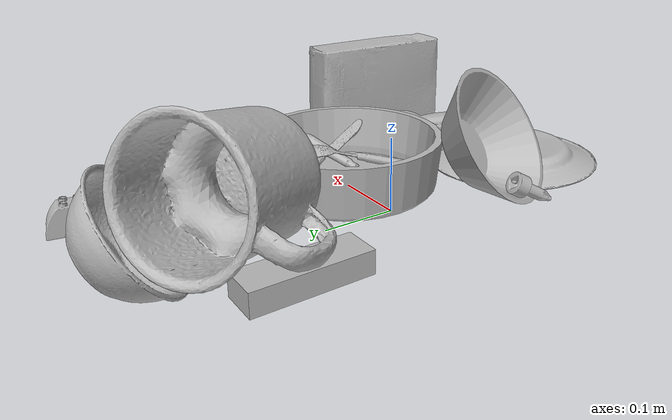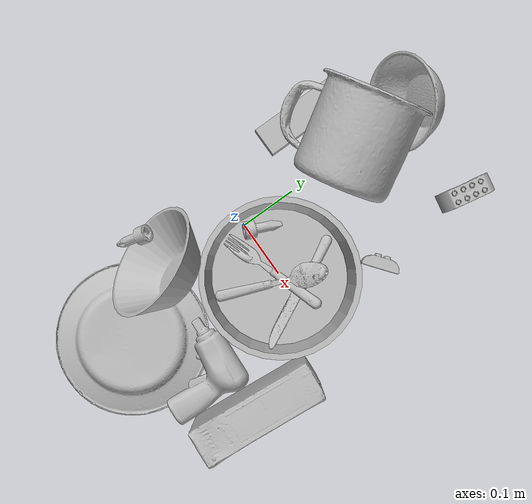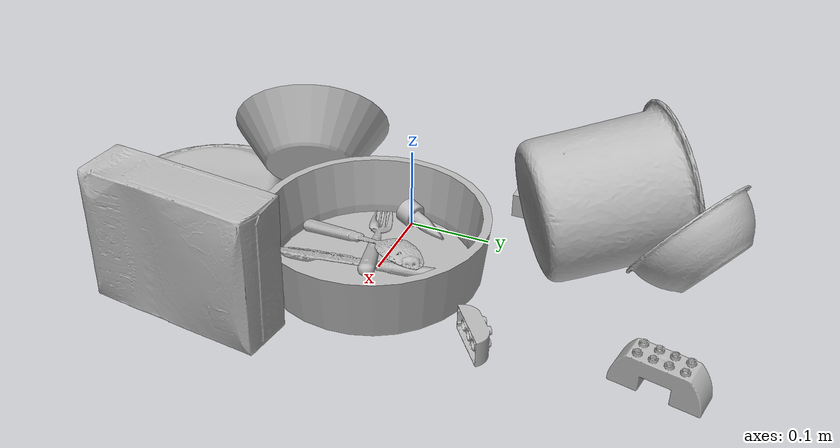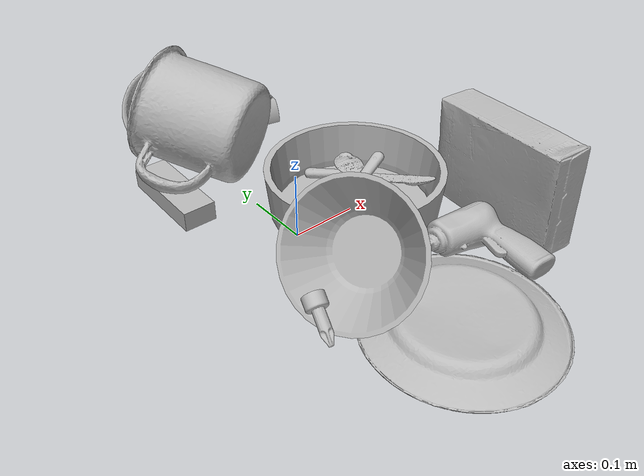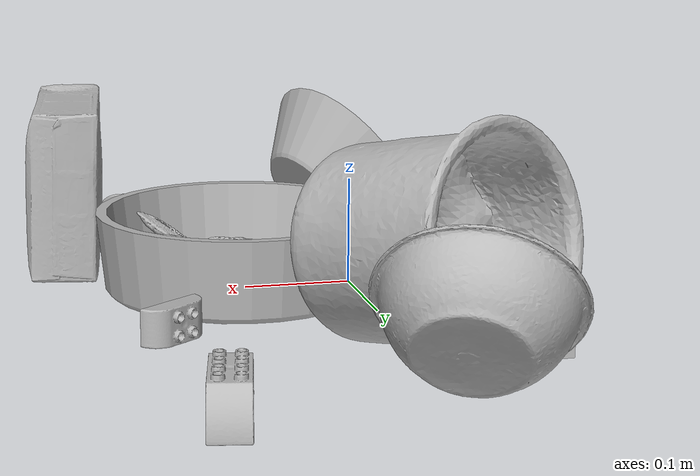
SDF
<sdf version="1.4">
  <world name="default">
    <light name="light1" type="point">
      <pose>0 0 1 0 0 0</pose>
      <diffuse>3 3 3 1</diffuse>
      <specular>3 3 3 1</specular>
    </light>
    <light name="light2" type="point">
      <pose>0 0.5 2 0 0 0</pose>
      <diffuse>1 1 1 1</diffuse>
      <specular>1 1 1 1</specular>
    </light>
    <light name="light3" type="point">
      <pose>0 0.5 2 0 0 0</pose>
      <diffuse>3 3 3 1</diffuse>
      <specular>3 3 3 1</specular>
    </light>
    <scene>
      <ambient>0.7 0.7 0.7</ambient>
    </scene>
    <model name="plate1">
      <link name="link_plate1">
        <collision name="default">
          <geometry>
            <mesh>
              <uri>model://plate/collision_meshes/collision.obj</uri>
              <scale>1.0 1.0 1.0</scale>
            </mesh>
          </geometry>
          <surface>
            <friction>
              <ode>
                <mu>0.5</mu>
                <mu2>0.5</mu2>
              </ode>
            </friction>
          <contact>
        <ode>
            <max_vel>0</max_vel>
            <min_depth>0.0001</min_depth>
            <kp>1e8</kp>
        </ode>
    </contact></surface>
        </collision>
        <visual name="default">
          <geometry>
            <mesh>
              <uri>model://plate/visual_meshes/visual.dae</uri>
              <scale>1.0 1.0 1.0</scale>
            </mesh>
          </geometry>
        </visual>
        <inertial>
          <mass>0.2627958059310913</mass>
          <pose>-0.0006044646725058556 0.00027825895813293755 -0.0010561998933553696 0.0022187866930069794 -0.0032254842153956703 0.4526099982878722</pose>
          <inertia>
            <ixx>0.0012293643</ixx>
            <iyy>0.0012176059</iyy>
            <izz>0.0024044532</izz>
            <ixy>0</ixy>
            <ixz>0</ixz>
            <iyz>0</iyz>
          </inertia>
        </inertial>
      </link>
      <pose>0.04648564010858536 -0.26571765542030334 0.013449820689857006 3.141463571122931 -0.003172021091771485 2.018333609895587</pose>
    </model>
    <model name="plate2">
      <link name="link_plate2">
        <collision name="default">
          <geometry>
            <mesh>
              <uri>model://pan_tefal/collision_meshes/collision.obj</uri>
              <scale>1.0 1.0 1.0</scale>
            </mesh>
          </geometry>
          <surface>
            <friction>
              <ode>
                <mu>0.5</mu>
                <mu2>0.5</mu2>
              </ode>
            </friction>
          <contact>
        <ode>
            <max_vel>0</max_vel>
            <min_depth>0.0001</min_depth>
            <kp>1e8</kp>
        </ode>
    </contact></surface>
        </collision>
        <visual name="default">
          <geometry>
            <mesh>
              <uri>model://pan_tefal/visual_meshes/visual.dae</uri>
              <scale>1.0 1.0 1.0</scale>
            </mesh>
          </geometry>
        </visual>
        <inertial>
          <mass>1.5012701749801636</mass>
          <pose>-0.00018001999706029892 3.279017983004451e-05 -0.00851493701338768 0.0008190300793188327 -0.0003301349064117064 -0.3318640955526003</pose>
          <inertia>
            <ixx>0.010363197</ixx>
            <iyy>0.010430007</iyy>
            <izz>0.019076647</izz>
            <ixy>0</ixy>
            <ixz>0</ixz>
            <iyz>0</iyz>
          </inertia>
        </inertial>
      </link>
      <pose>0.10555864125490189 -0.002104570623487234 0.038050007075071335 -2.1242047994123165e-07 -7.558890333707947e-09 -3.131102516042075</pose>
    </model>
    <model name="bowl1">
      <link name="link_bowl1">
        <collision name="default">
          <geometry>
            <mesh>
              <uri>model://bowl_a/collision_meshes/collision.obj</uri>
              <scale>1.0 1.0 1.0</scale>
            </mesh>
          </geometry>
          <surface>
            <friction>
              <ode>
                <mu>0.5</mu>
                <mu2>0.5</mu2>
              </ode>
            </friction>
          <contact>
        <ode>
            <max_vel>0</max_vel>
            <min_depth>0.0001</min_depth>
            <kp>1e8</kp>
        </ode>
    </contact></surface>
        </collision>
        <visual name="default">
          <geometry>
            <mesh>
              <uri>model://bowl_a/visual_meshes/visual.dae</uri>
              <scale>1.0 1.0 1.0</scale>
            </mesh>
          </geometry>
        </visual>
        <inertial>
          <mass>0.25230005383491516</mass>
          <pose>0.0002786753175314516 4.731153603643179e-05 -0.001376529224216938 -0.000980537182568925 -0.0010938202432478224 -0.19123453155183487</pose>
          <inertia>
            <ixx>0.00071831</ixx>
            <iyy>0.0007227198</iyy>
            <izz>0.0012775414</izz>
            <ixy>0</ixy>
            <ixz>0</ixz>
            <iyz>0</iyz>
          </inertia>
        </inertial>
      </link>
      <pose>-0.01574126072227955 -0.14586803317070007 0.06938415765762329 0.8204739546882138 -0.6586671042839594 -0.654350637209307</pose>
    </model>
    <model name="bowl2">
      <link name="link_bowl2">
        <collision name="default">
          <geometry>
            <mesh>
              <uri>model://bowl/collision_meshes/collision.obj</uri>
              <scale>1.0 1.0 1.0</scale>
            </mesh>
          </geometry>
          <surface>
            <friction>
              <ode>
                <mu>0.5</mu>
                <mu2>0.5</mu2>
              </ode>
            </friction>
          <contact>
        <ode>
            <max_vel>0</max_vel>
            <min_depth>0.0001</min_depth>
            <kp>1e8</kp>
        </ode>
    </contact></surface>
        </collision>
        <visual name="default">
          <geometry>
            <mesh>
              <uri>model://bowl/visual_meshes/visual.dae</uri>
              <scale>1.0 1.0 1.0</scale>
            </mesh>
          </geometry>
        </visual>
        <inertial>
          <mass>0.09131127595901489</mass>
          <pose>0.00020444947585929185 -0.0010302107548341155 -0.0008042654953896999 -0.01576413996306862 0.014546728377416086 0.7140363947853973</pose>
          <inertia>
            <ixx>0.00020974927</ixx>
            <iyy>0.00020506265</iyy>
            <izz>0.00035287044</izz>
            <ixy>0</ixy>
            <ixz>0</ixz>
            <iyz>0</iyz>
          </inertia>
        </inertial>
      </link>
      <pose>-0.0023281374014914036 0.3415287733078003 0.05704918131232262 0.18064222299856503 0.9794482936388661 -1.8106308147876005</pose>
    </model>
    <model name="silverware1">
      <link name="link_silverware1">
        <collision name="default">
          <geometry>
            <mesh>
              <uri>model://knife/collision_meshes/collision.obj</uri>
              <scale>1.0 1.0 1.0</scale>
            </mesh>
          </geometry>
          <surface>
            <friction>
              <ode>
                <mu>0.5</mu>
                <mu2>0.5</mu2>
              </ode>
            </friction>
          <contact>
        <ode>
            <max_vel>0</max_vel>
            <min_depth>0.0001</min_depth>
            <kp>1e8</kp>
        </ode>
    </contact></surface>
        </collision>
        <visual name="default">
          <geometry>
            <mesh>
              <uri>model://knife/visual_meshes/visual.dae</uri>
              <scale>1.0 1.0 1.0</scale>
            </mesh>
          </geometry>
        </visual>
        <inertial>
          <mass>0.033491987735033035</mass>
          <pose>-0.023785259574651718 0.00152751209679991 5.062024501967244e-05 0.07305195921562309 0.017248415702697233 -0.007409822782391368</pose>
          <inertia>
            <ixx>9.5063825e-07</ixx>
            <iyy>0.00012867076</iyy>
            <izz>0.00012897696</izz>
            <ixy>0</ixy>
            <ixz>0</ixz>
            <iyz>0</iyz>
          </inertia>
        </inertial>
      </link>
      <pose>0.14235657453536987 0.010758575052022934 0.03509409353137016 0.14211787546857935 -0.21384357549019697 -1.1267295750923567</pose>
    </model>
    <model name="box1">
      <link name="link_box1">
        <collision name="default">
          <geometry>
            <mesh>
              <uri>model://cracker_box/collision_meshes/collision.obj</uri>
              <scale>1.0 1.0 1.0</scale>
            </mesh>
          </geometry>
          <surface>
            <friction>
              <ode>
                <mu>0.5</mu>
                <mu2>0.5</mu2>
              </ode>
            </friction>
          <contact>
        <ode>
            <max_vel>0</max_vel>
            <min_depth>0.0001</min_depth>
            <kp>1e8</kp>
        </ode>
    </contact></surface>
        </collision>
        <visual name="default">
          <geometry>
            <mesh>
              <uri>model://cracker_box/visual_meshes/visual.dae</uri>
              <scale>1.0 1.0 1.0</scale>
            </mesh>
          </geometry>
        </visual>
        <inertial>
          <mass>3.401942253112793</mass>
          <pose>0.0009464150061830878 0.00025434247800149024 -0.001702953246422112 -0.00031620765582640923 -0.011106486806186075 0.0025467954673401043</pose>
          <inertia>
            <ixx>0.008653021</ixx>
            <iyy>0.014287839</iyy>
            <izz>0.020390058</izz>
            <ixy>0</ixy>
            <ixz>0</ixz>
            <iyz>0</iyz>
          </inertia>
        </inertial>
      </link>
      <pose>0.25555989146232605 -0.1522073745727539 0.08175768703222275 1.545234165786584 0.00904015641250715 1.4903547018559473</pose>
    </model>
    <model name="box2">
      <link name="link_box2">
        <collision name="default">
          <geometry>
            <mesh>
              <uri>model://jenga/collision_meshes/collision.obj</uri>
              <scale>1.0 1.0 1.0</scale>
            </mesh>
          </geometry>
          <surface>
            <friction>
              <ode>
                <mu>0.5</mu>
                <mu2>0.5</mu2>
              </ode>
            </friction>
          <contact>
        <ode>
            <max_vel>0</max_vel>
            <min_depth>0.0001</min_depth>
            <kp>1e8</kp>
        </ode>
    </contact></surface>
        </collision>
        <visual name="default">
          <geometry>
            <mesh>
              <uri>model://jenga/visual_meshes/visual.dae</uri>
              <scale>1.0 1.0 1.0</scale>
            </mesh>
          </geometry>
        </visual>
        <inertial>
          <mass>0.15917322039604187</mass>
          <pose>-2.502856091268768e-07 -0.00010250010382151231 -4.0923405322246253e-05 0.0 -7.34215461761844e-07 0.0</pose>
          <inertia>
            <ixx>4.4047094e-05</ixx>
            <iyy>0.0002984619</iyy>
            <izz>0.00031863348</izz>
            <ixy>0</ixy>
            <ixz>0</ixz>
            <iyz>0</iyz>
          </inertia>
        </inertial>
      </link>
      <pose>-0.09256572276353836 0.18268989026546478 0.014998503029346466 0.0001528341179240112 1.1228352240964681e-05 1.5708010691258716</pose>
    </model>
    <model name="cup1">
      <link name="link_cup1">
        <collision name="default">
          <geometry>
            <mesh>
              <uri>model://mug/collision_meshes/collision.obj</uri>
              <scale>2.0 2.0 2.0</scale>
            </mesh>
          </geometry>
          <surface>
            <friction>
              <ode>
                <mu>0.5</mu>
                <mu2>0.5</mu2>
              </ode>
            </friction>
          <contact>
        <ode>
            <max_vel>0</max_vel>
            <min_depth>0.0001</min_depth>
            <kp>1e8</kp>
        </ode>
    </contact></surface>
        </collision>
        <visual name="default">
          <geometry>
            <mesh>
              <uri>model://mug/visual_meshes/visual.dae</uri>
              <scale>2.0 2.0 2.0</scale>
            </mesh>
          </geometry>
        </visual>
        <inertial>
          <mass>1.8939067125320435</mass>
          <pose>0.019143342971801758 0.0016286505851894617 -0.02189466543495655 -0.12983139039190478 0.08737723243087561 0.05507286357129759</pose>
          <inertia>
            <ixx>0.0075250226</ixx>
            <iyy>0.008405008</iyy>
            <izz>0.009720505</izz>
            <ixy>0</ixy>
            <ixz>0</ixz>
            <iyz>0</iyz>
          </inertia>
        </inertial>
      </link>
      <pose>-0.024134553968906403 0.21727630496025085 0.08606478571891785 -1.3649962720217965 -0.3899702803615397 0.46965394269674543</pose>
    </model>
    <model name="silverware2">
      <link name="link_silverware2">
        <collision name="default">
          <geometry>
            <mesh>
              <uri>model://fork/collision_meshes/collision.obj</uri>
              <scale>1.0 1.0 1.0</scale>
            </mesh>
          </geometry>
          <surface>
            <friction>
              <ode>
                <mu>0.5</mu>
                <mu2>0.5</mu2>
              </ode>
            </friction>
          <contact>
        <ode>
            <max_vel>0</max_vel>
            <min_depth>0.0001</min_depth>
            <kp>1e8</kp>
        </ode>
    </contact></surface>
        </collision>
        <visual name="default">
          <geometry>
            <mesh>
              <uri>model://fork/visual_meshes/visual.dae</uri>
              <scale>1.0 1.0 1.0</scale>
            </mesh>
          </geometry>
        </visual>
        <inertial>
          <mass>0.01107261423021555</mass>
          <pose>-0.02957005240023136 0.00046588238910771906 0.0003218861820641905 -0.01355183639158028 -0.010977839693189282 0.014453902572364752</pose>
          <inertia>
            <ixx>3.8815773e-07</ixx>
            <iyy>2.8907412e-05</iyy>
            <izz>2.9081024e-05</izz>
            <ixy>0</ixy>
            <ixz>0</ixz>
            <iyz>0</iyz>
          </inertia>
        </inertial>
      </link>
      <pose>0.09228482842445374 -0.0060539236292243 0.029128236696124077 0.07976088151668248 0.2678232450770493 -2.8184620966607326</pose>
    </model>
    <model name="silverware3">
      <link name="link_silverware3">
        <collision name="default">
          <geometry>
            <mesh>
              <uri>model://spoon/collision_meshes/collision.obj</uri>
              <scale>1.0 1.0 1.0</scale>
            </mesh>
          </geometry>
          <surface>
            <friction>
              <ode>
                <mu>0.5</mu>
                <mu2>0.5</mu2>
              </ode>
            </friction>
          <contact>
        <ode>
            <max_vel>0</max_vel>
            <min_depth>0.0001</min_depth>
            <kp>1e8</kp>
        </ode>
    </contact></surface>
        </collision>
        <visual name="default">
          <geometry>
            <mesh>
              <uri>model://spoon/visual_meshes/visual.dae</uri>
              <scale>1.0 1.0 1.0</scale>
            </mesh>
          </geometry>
        </visual>
        <inertial>
          <mass>0.03720218688249588</mass>
          <pose>-0.005526323337107897 -0.00160341733135283 -0.0007271655485965312 0.035216710753312216 -0.03906584126265578 0.006150608185168733</pose>
          <inertia>
            <ixx>2.0692462e-06</ixx>
            <iyy>0.00014155307</iyy>
            <izz>0.00014257352</izz>
            <ixy>0</ixy>
            <ixz>0</ixz>
            <iyz>0</iyz>
          </inertia>
        </inertial>
      </link>
      <pose>0.10752282291650772 -0.0209870096296072 0.03579985722899437 3.0802228713287505 -0.26475749722821457 1.2016004692567737</pose>
    </model>
    <model name="toy1">
      <link name="link_toy1">
        <collision name="default">
          <geometry>
            <mesh>
              <uri>model://e_toy_airplane/collision_meshes/collision.obj</uri>
              <scale>1.0 1.0 1.0</scale>
            </mesh>
          </geometry>
          <surface>
            <friction>
              <ode>
                <mu>0.5</mu>
                <mu2>0.5</mu2>
              </ode>
            </friction>
          <contact>
        <ode>
            <max_vel>0</max_vel>
            <min_depth>0.0001</min_depth>
            <kp>1e8</kp>
        </ode>
    </contact></surface>
        </collision>
        <visual name="default">
          <geometry>
            <mesh>
              <uri>model://e_toy_airplane/visual_meshes/visual.dae</uri>
              <scale>1.0 1.0 1.0</scale>
            </mesh>
          </geometry>
        </visual>
        <inertial>
          <mass>0.02491888962686062</mass>
          <pose>0.00011740486661437899 -2.248287455586251e-05 -0.011187204159796238 0.00551850201937057 0.009228289896812953 0.1504152046419029</pose>
          <inertia>
            <ixx>7.60553e-06</ixx>
            <iyy>7.52773e-06</iyy>
            <izz>2.2857607e-06</izz>
            <ixy>0</ixy>
            <ixz>0</ixz>
            <iyz>0</iyz>
          </inertia>
        </inertial>
      </link>
      <pose>0.02166099287569523 0.024037985131144524 0.01922314427793026 1.7742800460649326 -0.5926902754266586 2.598926787187025</pose>
    </model>
    <model name="toy2">
      <link name="link_toy2">
        <collision name="default">
          <geometry>
            <mesh>
              <uri>model://e_lego_duplo/collision_meshes/collision.obj</uri>
              <scale>1.0 1.0 1.0</scale>
            </mesh>
          </geometry>
          <surface>
            <friction>
              <ode>
                <mu>0.5</mu>
                <mu2>0.5</mu2>
              </ode>
            </friction>
          <contact>
        <ode>
            <max_vel>0</max_vel>
            <min_depth>0.0001</min_depth>
            <kp>1e8</kp>
        </ode>
    </contact></surface>
        </collision>
        <visual name="default">
          <geometry>
            <mesh>
              <uri>model://e_lego_duplo/visual_meshes/visual.dae</uri>
              <scale>1.0 1.0 1.0</scale>
            </mesh>
          </geometry>
        </visual>
        <inertial>
          <mass>0.08635181933641434</mass>
          <pose>0.00032560451654717326 0.0002348542184336111 0.0019521444337442517 -0.022567902749969417 -6.824781923482006e-05 -0.00762515629770681</pose>
          <inertia>
            <ixx>1.8007207e-05</ixx>
            <iyy>7.390619e-05</iyy>
            <izz>7.1969785e-05</izz>
            <ixy>0</ixy>
            <ixz>0</ixz>
            <iyz>0</iyz>
          </inertia>
        </inertial>
      </link>
      <pose>0.1731659173965454 0.33579692244529724 0.021808993071317673 -7.62492944124847e-08 -2.2453530222595726e-07 -1.7563788347256128</pose>
    </model>
    <model name="toy3">
      <link name="link_toy3">
        <collision name="default">
          <geometry>
            <mesh>
              <uri>model://d_toy_airplane/collision_meshes/collision.obj</uri>
              <scale>1.0 1.0 1.0</scale>
            </mesh>
          </geometry>
          <surface>
            <friction>
              <ode>
                <mu>0.5</mu>
                <mu2>0.5</mu2>
              </ode>
            </friction>
          <contact>
        <ode>
            <max_vel>0</max_vel>
            <min_depth>0.0001</min_depth>
            <kp>1e8</kp>
        </ode>
    </contact></surface>
        </collision>
        <visual name="default">
          <geometry>
            <mesh>
              <uri>model://d_toy_airplane/visual_meshes/visual.dae</uri>
              <scale>1.0 1.0 1.0</scale>
            </mesh>
          </geometry>
        </visual>
        <inertial>
          <mass>0.01398532185703516</mass>
          <pose>9.410311031388119e-05 -5.809316644445062e-05 -0.011728093959391117 0.00026700916858413164 0.004678987951971881 0.5194708538811167</pose>
          <inertia>
            <ixx>4.1925277e-06</ixx>
            <iyy>4.1956896e-06</iyy>
            <izz>1.2657512e-06</izz>
            <ixy>0</ixy>
            <ixz>0</ixz>
            <iyz>0</iyz>
          </inertia>
        </inertial>
      </link>
      <pose>-0.09033644944429398 -0.16593749821186066 0.019062921404838562 2.1627676002183502 0.5224825211181211 0.04367701299414406</pose>
    </model>
    <model name="toy4">
      <link name="link_toy4">
        <collision name="default">
          <geometry>
            <mesh>
              <uri>model://b_toy_airplane/collision_meshes/collision.obj</uri>
              <scale>1.0 1.0 1.0</scale>
            </mesh>
          </geometry>
          <surface>
            <friction>
              <ode>
                <mu>0.5</mu>
                <mu2>0.5</mu2>
              </ode>
            </friction>
          <contact>
        <ode>
            <max_vel>0</max_vel>
            <min_depth>0.0001</min_depth>
            <kp>1e8</kp>
        </ode>
    </contact></surface>
        </collision>
        <visual name="default">
          <geometry>
            <mesh>
              <uri>model://b_toy_airplane/visual_meshes/visual.dae</uri>
              <scale>1.0 1.0 1.0</scale>
            </mesh>
          </geometry>
        </visual>
        <inertial>
          <mass>0.39888885617256165</mass>
          <pose>0.00508136348798871 0.0040155863389372826 0.009543065913021564 -0.04001810285123905 -0.040221831504284974 -0.560150355465512</pose>
          <inertia>
            <ixx>0.00074054446</ixx>
            <iyy>0.00029600295</iyy>
            <izz>0.00092131115</izz>
            <ixy>0</ixy>
            <ixz>0</ixz>
            <iyz>0</iyz>
          </inertia>
        </inertial>
      </link>
      <pose>0.1753569394350052 -0.19137412309646606 0.03713634982705116 3.1271433370910895 -0.05406047563951132 3.080064352994625</pose>
    </model>
    <model name="toy5">
      <link name="link_toy5">
        <collision name="default">
          <geometry>
            <mesh>
              <uri>model://a_lego_duplo/collision_meshes/collision.obj</uri>
              <scale>1.0 1.0 1.0</scale>
            </mesh>
          </geometry>
          <surface>
            <friction>
              <ode>
                <mu>0.5</mu>
                <mu2>0.5</mu2>
              </ode>
            </friction>
          <contact>
        <ode>
            <max_vel>0</max_vel>
            <min_depth>0.0001</min_depth>
            <kp>1e8</kp>
        </ode>
    </contact></surface>
        </collision>
        <visual name="default">
          <geometry>
            <mesh>
              <uri>model://a_lego_duplo/visual_meshes/visual.dae</uri>
              <scale>1.0 1.0 1.0</scale>
            </mesh>
          </geometry>
        </visual>
        <inertial>
          <mass>0.014756478369235992</mass>
          <pose>-0.00011337623436702415 0.00018517495482228696 0.00036926049506291747 -0.01411700810413075 -0.00012565743579302476 6.142605902116464e-05</pose>
          <inertia>
            <ixx>1.8918981e-06</ixx>
            <iyy>4.238266e-06</iyy>
            <izz>5.250033e-06</izz>
            <ixy>0</ixy>
            <ixz>0</ixz>
            <iyz>0</iyz>
          </inertia>
        </inertial>
      </link>
      <pose>0.1845606565475464 0.15136858820915222 0.016247069463133812 -1.570805809841133 -3.227715150146973e-07 0.6597871068461951</pose>
    </model>
  <physics type="ode">
      <max_contacts>50</max_contacts>
      <ode>
        <solver>
          <type>quick</type>
          <iters>75</iters>
        </solver>
        <constraints>
          <contact_max_correcting_vel>0</contact_max_correcting_vel>
          <contact_surface_layer>0</contact_surface_layer>
        </constraints>
      </ode>
    </physics></world>
</sdf>
